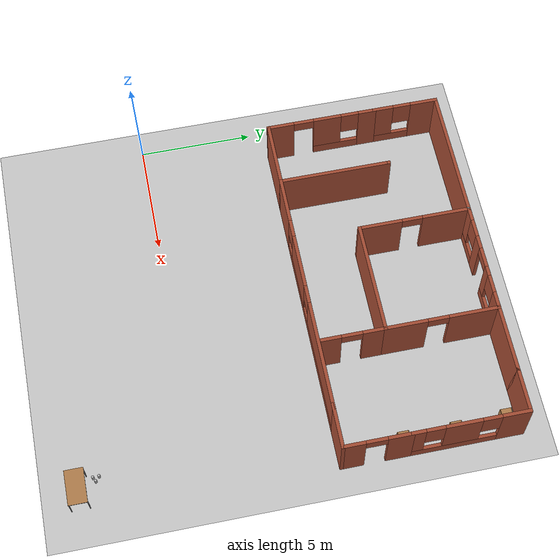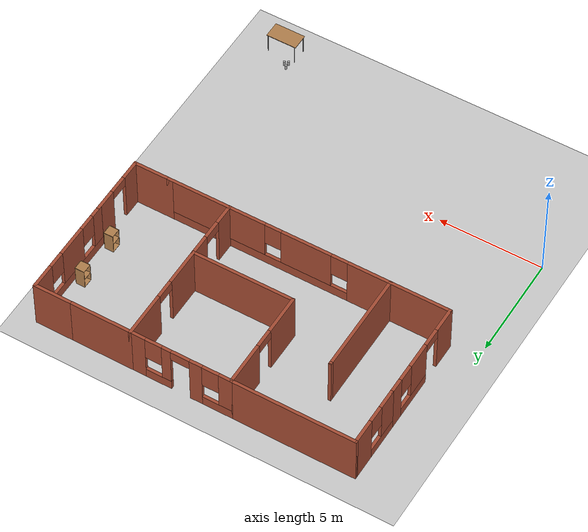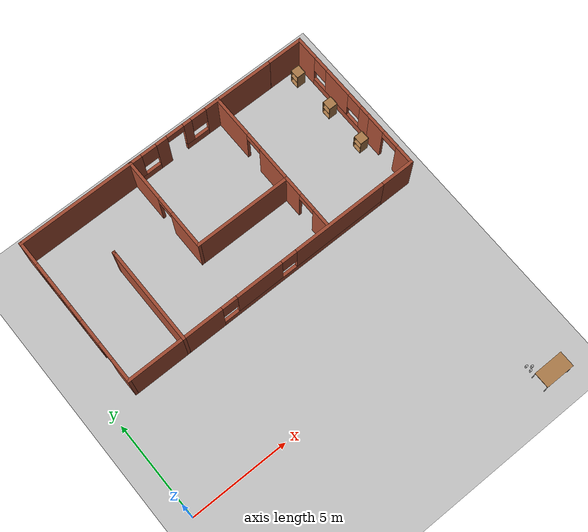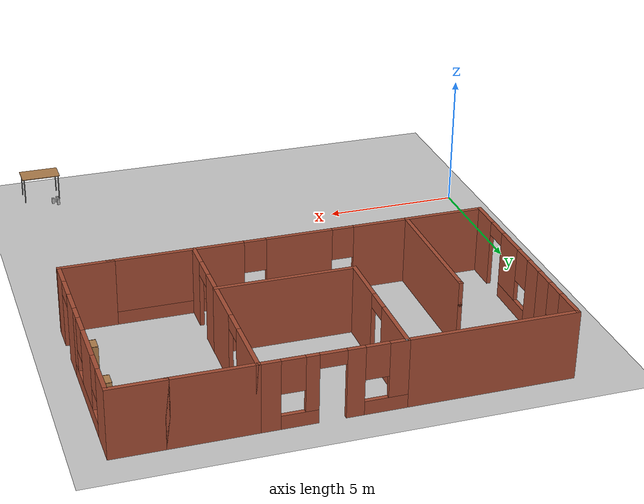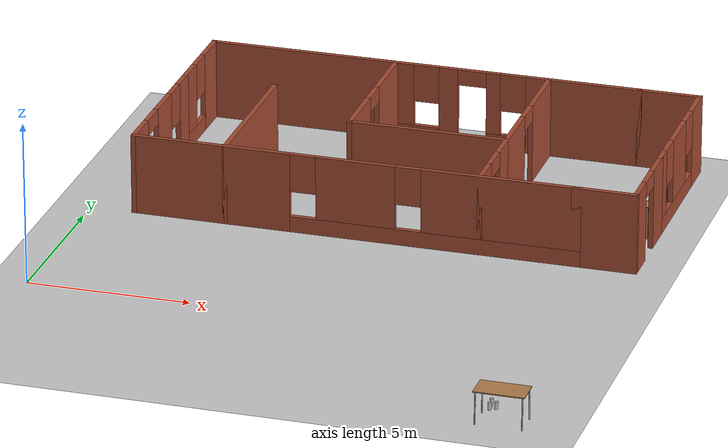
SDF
<sdf version="1.7">
 <world name="default">
  <model name="ground_plane">
   <static>1</static>
   <link name="link">
    <collision name="collision">
     <geometry><plane><normal>0 0 1</normal><size>100 100</size></plane></geometry>
     <surface><friction><ode><mu>100</mu><mu2>50</mu2></ode></friction></surface>
    </collision>
    <visual name="visual">
     <cast_shadows>0</cast_shadows>
     <geometry><plane><normal>0 0 1</normal><size>100 100</size></plane></geometry>
     <material>
      <script><uri>file://media/materials/scripts/gazebo.material</uri><name>Gazebo/Grey</name></script>
     </material>
    </visual>
   </link>
  </model>
  <model name="brick_house1">
   <pose>9.06537 9.59649 0 0 -0 0</pose>
   <link name="Wall_26">
    <collision name="Wall_26_Collision">
     <geometry><box><size>5 0.15 2.5</size></box></geometry>
     <pose>0 0 1.25 0 -0 0</pose>
    </collision>
    <visual name="Wall_26_Visual">
     <pose>0 0 1.25 0 -0 0</pose>
     <geometry><box><size>5 0.15 2.5</size></box></geometry>
     <material>
      <script><uri>file://media/materials/scripts/gazebo.material</uri><name>Gazebo/Bricks</name></script>
      <ambient>1 1 1 1</ambient>
     </material>
     <meta><layer>0</layer></meta>
    </visual>
    <pose>0.575 -1 0 0 -0 3.14159</pose>
   </link>
   <link name="Wall_29">
    <pose>3 1.425 0 0 -0 1.5708</pose>
    <visual name="Wall_29_Visual_0">
     <pose>-1.55939 0 1.25 0 -0 0</pose>
     <geometry><box><size>1.88122 0.15 2.5</size></box></geometry>
     <material>
      <script><uri>file://media/materials/scripts/gazebo.material</uri><name>Gazebo/Bricks</name></script>
      <ambient>1 1 1 1</ambient>
     </material>
     <meta><layer>0</layer></meta>
    </visual>
    <collision name="Wall_29_Collision_0">
     <geometry><box><size>1.88122 0.15 2.5</size></box></geometry>
     <pose>-1.55939 0 1.25 0 -0 0</pose>
    </collision>
    <visual name="Wall_29_Visual_1">
     <pose>1.39061 0 1.25 0 -0 0</pose>
     <geometry><box><size>2.21878 0.15 2.5</size></box></geometry>
     <material>
      <script><uri>file://media/materials/scripts/gazebo.material</uri><name>Gazebo/Bricks</name></script>
      <ambient>1 1 1 1</ambient>
     </material>
     <meta><layer>0</layer></meta>
    </visual>
    <collision name="Wall_29_Collision_1">
     <geometry><box><size>2.21878 0.15 2.5</size></box></geometry>
     <pose>1.39061 0 1.25 0 -0 0</pose>
    </collision>
    <visual name="Wall_29_Visual_2">
     <pose>-0.168782 0 2.25 0 -0 0</pose>
     <geometry><box><size>0.9 0.15 0.5</size></box></geometry>
     <material>
      <script><uri>file://media/materials/scripts/gazebo.material</uri><name>Gazebo/Bricks</name></script>
      <ambient>1 1 1 1</ambient>
     </material>
     <meta><layer>0</layer></meta>
    </visual>
    <collision name="Wall_29_Collision_2">
     <geometry><box><size>0.9 0.15 0.5</size></box></geometry>
     <pose>-0.168782 0 2.25 0 -0 0</pose>
    </collision>
   </link>
   <link name="Wall_30">
    <pose>0.575 3.85 0 0 -0 3.14159</pose>
    <visual name="Wall_30_Visual_0">
     <pose>-2.10282 0 1.25 0 -0 0</pose>
     <geometry><box><size>0.794364 0.15 2.5</size></box></geometry>
     <material>
      <script><uri>file://media/materials/scripts/gazebo.material</uri><name>Gazebo/Bricks</name></script>
      <ambient>1 1 1 1</ambient>
     </material>
     <meta><layer>0</layer></meta>
    </visual>
    <collision name="Wall_30_Collision_0">
     <geometry><box><size>0.794364 0.15 2.5</size></box></geometry>
     <pose>-2.10282 0 1.25 0 -0 0</pose>
    </collision>
    <visual name="Wall_30_Visual_1">
     <pose>0.739466 0 1.25 0 -0 0</pose>
     <geometry><box><size>0.601675 0.15 2.5</size></box></geometry>
     <material>
      <script><uri>file://media/materials/scripts/gazebo.material</uri><name>Gazebo/Bricks</name></script>
      <ambient>1 1 1 1</ambient>
     </material>
     <meta><layer>0</layer></meta>
    </visual>
    <collision name="Wall_30_Collision_1">
     <geometry><box><size>0.601675 0.15 2.5</size></box></geometry>
     <pose>0.739466 0 1.25 0 -0 0</pose>
    </collision>
    <visual name="Wall_30_Visual_2">
     <pose>-1.0835 0 0.25 0 -0 0</pose>
     <geometry><box><size>1.24426 0.15 0.5</size></box></geometry>
     <material>
      <script><uri>file://media/materials/scripts/gazebo.material</uri><name>Gazebo/Bricks</name></script>
      <ambient>1 1 1 1</ambient>
     </material>
     <meta><layer>0</layer></meta>
    </visual>
    <collision name="Wall_30_Collision_2">
     <geometry><box><size>1.24426 0.15 0.5</size></box></geometry>
     <pose>-1.0835 0 0.25 0 -0 0</pose>
    </collision>
    <visual name="Wall_30_Visual_3">
     <pose>1.77015 0 0.25 0 -0 0</pose>
     <geometry><box><size>1.4597 0.15 0.5</size></box></geometry>
     <material>
      <script><uri>file://media/materials/scripts/gazebo.material</uri><name>Gazebo/Bricks</name></script>
      <ambient>1 1 1 1</ambient>
     </material>
     <meta><layer>0</layer></meta>
    </visual>
    <collision name="Wall_30_Collision_3">
     <geometry><box><size>1.4597 0.15 0.5</size></box></geometry>
     <pose>1.77015 0 0.25 0 -0 0</pose>
    </collision>
    <visual name="Wall_30_Visual_4">
     <pose>-0.683504 0 1.5 0 -0 0</pose>
     <geometry><box><size>0.444265 0.15 2</size></box></geometry>
     <material>
      <script><uri>file://media/materials/scripts/gazebo.material</uri><name>Gazebo/Bricks</name></script>
      <ambient>1 1 1 1</ambient>
     </material>
     <meta><layer>0</layer></meta>
    </visual>
    <collision name="Wall_30_Collision_4">
     <geometry><box><size>0.444265 0.15 2</size></box></geometry>
     <pose>-0.683504 0 1.5 0 -0 0</pose>
    </collision>
    <visual name="Wall_30_Visual_5">
     <pose>-0.683504 0 1.5 0 -0 0</pose>
     <geometry><box><size>0.444265 0.15 2</size></box></geometry>
     <material>
      <script><uri>file://media/materials/scripts/gazebo.material</uri><name>Gazebo/Bricks</name></script>
      <ambient>1 1 1 1</ambient>
     </material>
     <meta><layer>0</layer></meta>
    </visual>
    <collision name="Wall_30_Collision_5">
     <geometry><box><size>0.444265 0.15 2</size></box></geometry>
     <pose>-0.683504 0 1.5 0 -0 0</pose>
    </collision>
    <visual name="Wall_30_Visual_6">
     <pose>2.17015 0 1.5 0 -0 0</pose>
     <geometry><box><size>0.659696 0.15 2</size></box></geometry>
     <material>
      <script><uri>file://media/materials/scripts/gazebo.material</uri><name>Gazebo/Bricks</name></script>
      <ambient>1 1 1 1</ambient>
     </material>
     <meta><layer>0</layer></meta>
    </visual>
    <collision name="Wall_30_Collision_6">
     <geometry><box><size>0.659696 0.15 2</size></box></geometry>
     <pose>2.17015 0 1.5 0 -0 0</pose>
    </collision>
    <visual name="Wall_30_Visual_7">
     <pose>-1.30564 0 1.9 0 -0 0</pose>
     <geometry><box><size>0.8 0.15 1.2</size></box></geometry>
     <material>
      <script><uri>file://media/materials/scripts/gazebo.material</uri><name>Gazebo/Bricks</name></script>
      <ambient>1 1 1 1</ambient>
     </material>
     <meta><layer>0</layer></meta>
    </visual>
    <collision name="Wall_30_Collision_7">
     <geometry><box><size>0.8 0.15 1.2</size></box></geometry>
     <pose>-1.30564 0 1.9 0 -0 0</pose>
    </collision>
    <visual name="Wall_30_Visual_8">
     <pose>1.4403 0 1.9 0 -0 0</pose>
     <geometry><box><size>0.8 0.15 1.2</size></box></geometry>
     <material>
      <script><uri>file://media/materials/scripts/gazebo.material</uri><name>Gazebo/Bricks</name></script>
      <ambient>1 1 1 1</ambient>
     </material>
     <meta><layer>0</layer></meta>
    </visual>
    <collision name="Wall_30_Collision_8">
     <geometry><box><size>0.8 0.15 1.2</size></box></geometry>
     <pose>1.4403 0 1.9 0 -0 0</pose>
    </collision>
    <visual name="Wall_30_Visual_9">
     <pose>-0.011371 0 2.25 0 -0 0</pose>
     <geometry><box><size>0.9 0.15 0.5</size></box></geometry>
     <material>
      <script><uri>file://media/materials/scripts/gazebo.material</uri><name>Gazebo/Bricks</name></script>
      <ambient>1 1 1 1</ambient>
     </material>
     <meta><layer>0</layer></meta>
    </visual>
    <collision name="Wall_30_Collision_9">
     <geometry><box><size>0.9 0.15 0.5</size></box></geometry>
     <pose>-0.011371 0 2.25 0 -0 0</pose>
    </collision>
    <visual name="Wall_30_Visual_10">
     <pose>-0.011371 0 2.25 0 -0 0</pose>
     <geometry><box><size>0.9 0.15 0.5</size></box></geometry>
     <material>
      <script><uri>file://media/materials/scripts/gazebo.material</uri><name>Gazebo/Bricks</name></script>
      <ambient>1 1 1 1</ambient>
     </material>
     <meta><layer>0</layer></meta>
    </visual>
    <collision name="Wall_30_Collision_10">
     <geometry><box><size>0.9 0.15 0.5</size></box></geometry>
     <pose>-0.011371 0 2.25 0 -0 0</pose>
    </collision>
   </link>
   <link name="Wall_31">
    <collision name="Wall_31_Collision">
     <geometry><box><size>0.15 0.15 2.5</size></box></geometry>
     <pose>0 0 1.25 0 -0 0</pose>
    </collision>
    <visual name="Wall_31_Visual">
     <pose>0 0 1.25 0 -0 0</pose>
     <geometry><box><size>0.15 0.15 2.5</size></box></geometry>
     <material>
      <script><uri>file://media/materials/scripts/gazebo.material</uri><name>Gazebo/Grey</name></script>
      <ambient>1 1 1 1</ambient>
     </material>
     <meta><layer>0</layer></meta>
    </visual>
    <pose>-1.85 3.85 0 0 -0 0</pose>
   </link>
   <link name="Wall_32">
    <pose>-1.85 1.425 0 0 -0 -1.5708</pose>
    <visual name="Wall_32_Visual_0">
     <pose>-1.42559 0 1.25 0 -0 0</pose>
     <geometry><box><size>2.14882 0.15 2.5</size></box></geometry>
     <material>
      <script><uri>file://media/materials/scripts/gazebo.material</uri><name>Gazebo/Bricks</name></script>
      <ambient>1 1 1 1</ambient>
     </material>
     <meta><layer>0</layer></meta>
    </visual>
    <collision name="Wall_32_Collision_0">
     <geometry><box><size>2.14882 0.15 2.5</size></box></geometry>
     <pose>-1.42559 0 1.25 0 -0 0</pose>
    </collision>
    <visual name="Wall_32_Visual_1">
     <pose>1.52441 0 1.25 0 -0 0</pose>
     <geometry><box><size>1.95118 0.15 2.5</size></box></geometry>
     <material>
      <script><uri>file://media/materials/scripts/gazebo.material</uri><name>Gazebo/Bricks</name></script>
      <ambient>1 1 1 1</ambient>
     </material>
     <meta><layer>0</layer></meta>
    </visual>
    <collision name="Wall_32_Collision_1">
     <geometry><box><size>1.95118 0.15 2.5</size></box></geometry>
     <pose>1.52441 0 1.25 0 -0 0</pose>
    </collision>
    <visual name="Wall_32_Visual_2">
     <pose>0.098822 0 2.25 0 -0 0</pose>
     <geometry><box><size>0.9 0.15 0.5</size></box></geometry>
     <material>
      <script><uri>file://media/materials/scripts/gazebo.material</uri><name>Gazebo/Bricks</name></script>
      <ambient>1 1 1 1</ambient>
     </material>
     <meta><layer>0</layer></meta>
    </visual>
    <collision name="Wall_32_Collision_2">
     <geometry><box><size>0.9 0.15 0.5</size></box></geometry>
     <pose>0.098822 0 2.25 0 -0 0</pose>
    </collision>
   </link>
   <link name="Wall_34">
    <collision name="Wall_34_Collision">
     <geometry><box><size>6 0.15 2.5</size></box></geometry>
     <pose>0 0 1.25 0 -0 0</pose>
    </collision>
    <visual name="Wall_34_Visual">
     <pose>0 0 1.25 0 -0 0</pose>
     <geometry><box><size>6 0.15 2.5</size></box></geometry>
     <material>
      <script><uri>file://media/materials/scripts/gazebo.material</uri><name>Gazebo/Bricks</name></script>
      <ambient>1 1 1 1</ambient>
     </material>
     <meta><layer>0</layer></meta>
    </visual>
    <pose>-4.775 3.85 0 0 -0 3.14159</pose>
   </link>
   <link name="Wall_35">
    <collision name="Wall_35_Collision">
     <geometry><box><size>0.15 0.15 2.5</size></box></geometry>
     <pose>0 0 1.25 0 -0 0</pose>
    </collision>
    <visual name="Wall_35_Visual">
     <pose>0 0 1.25 0 -0 0</pose>
     <geometry><box><size>0.15 0.15 2.5</size></box></geometry>
     <material>
      <script><uri>file://media/materials/scripts/gazebo.material</uri><name>Gazebo/Bricks</name></script>
      <ambient>1 1 1 1</ambient>
     </material>
     <meta><layer>0</layer></meta>
    </visual>
    <pose>-7.7 3.85 0 0 -0 0</pose>
   </link>
   <link name="Wall_39">
    <pose>-7.7 2.425 0 0 -0 -1.5708</pose>
    <visual name="Wall_39_Visual_0">
     <pose>-0.874139 0 1.25 0 -0 0</pose>
     <geometry><box><size>1.25172 0.15 2.5</size></box></geometry>
     <material>
      <script><uri>file://media/materials/scripts/gazebo.material</uri><name>Gazebo/Bricks</name></script>
      <ambient>1 1 1 1</ambient>
     </material>
     <meta><layer>0</layer></meta>
    </visual>
    <collision name="Wall_39_Collision_0">
     <geometry><box><size>1.25172 0.15 2.5</size></box></geometry>
     <pose>-0.874139 0 1.25 0 -0 0</pose>
    </collision>
    <visual name="Wall_39_Visual_1">
     <pose>0.625861 0 0.25 0 -0 0</pose>
     <geometry><box><size>1.74828 0.15 0.5</size></box></geometry>
     <material>
      <script><uri>file://media/materials/scripts/gazebo.material</uri><name>Gazebo/Bricks</name></script>
      <ambient>1 1 1 1</ambient>
     </material>
     <meta><layer>0</layer></meta>
    </visual>
    <collision name="Wall_39_Collision_1">
     <geometry><box><size>1.74828 0.15 0.5</size></box></geometry>
     <pose>0.625861 0 0.25 0 -0 0</pose>
    </collision>
    <visual name="Wall_39_Visual_2">
     <pose>1.02586 0 1.5 0 -0 0</pose>
     <geometry><box><size>0.948279 0.15 2</size></box></geometry>
     <material>
      <script><uri>file://media/materials/scripts/gazebo.material</uri><name>Gazebo/Bricks</name></script>
      <ambient>1 1 1 1</ambient>
     </material>
     <meta><layer>0</layer></meta>
    </visual>
    <collision name="Wall_39_Collision_2">
     <geometry><box><size>0.948279 0.15 2</size></box></geometry>
     <pose>1.02586 0 1.5 0 -0 0</pose>
    </collision>
    <visual name="Wall_39_Visual_3">
     <pose>0.151721 0 1.9 0 -0 0</pose>
     <geometry><box><size>0.8 0.15 1.2</size></box></geometry>
     <material>
      <script><uri>file://media/materials/scripts/gazebo.material</uri><name>Gazebo/Bricks</name></script>
      <ambient>1 1 1 1</ambient>
     </material>
     <meta><layer>0</layer></meta>
    </visual>
    <collision name="Wall_39_Collision_3">
     <geometry><box><size>0.8 0.15 1.2</size></box></geometry>
     <pose>0.151721 0 1.9 0 -0 0</pose>
    </collision>
   </link>
   <link name="Wall_41">
    <collision name="Wall_41_Collision">
     <geometry><box><size>0.15 0.15 2.5</size></box></geometry>
     <pose>0 0 1.25 0 -0 0</pose>
    </collision>
    <visual name="Wall_41_Visual">
     <pose>0 0 1.25 0 -0 0</pose>
     <geometry><box><size>0.15 0.15 2.5</size></box></geometry>
     <material>
      <script><uri>file://media/materials/scripts/gazebo.material</uri><name>Gazebo/Bricks</name></script>
      <ambient>1 1 1 1</ambient>
     </material>
     <meta><layer>0</layer></meta>
    </visual>
    <pose>-4.85 1 0 0 -0 0</pose>
   </link>
   <link name="Wall_44">
    <collision name="Wall_44_Collision">
     <geometry><box><size>5 0.15 2.5</size></box></geometry>
     <pose>0 0 1.25 0 -0 0</pose>
    </collision>
    <visual name="Wall_44_Visual">
     <pose>0 0 1.25 0 -0 0</pose>
     <geometry><box><size>5 0.15 2.5</size></box></geometry>
     <material>
      <script><uri>file://media/materials/scripts/gazebo.material</uri><name>Gazebo/Bricks</name></script>
      <ambient>1 1 1 1</ambient>
     </material>
     <meta><layer>0</layer></meta>
    </visual>
    <pose>-4.85 -1.425 0 0 -0 -1.5708</pose>
   </link>
   <link name="Wall_46">
    <pose>-7.7 -1.425 0 0 -0 -1.5708</pose>
    <visual name="Wall_46_Visual_0">
     <pose>-2.09427 0 1.25 0 -0 0</pose>
     <geometry><box><size>0.811467 0.15 2.5</size></box></geometry>
     <material>
      <script><uri>file://media/materials/scripts/gazebo.material</uri><name>Gazebo/Bricks</name></script>
      <ambient>1 1 1 1</ambient>
     </material>
     <meta><layer>0</layer></meta>
    </visual>
    <collision name="Wall_46_Collision_0">
     <geometry><box><size>0.811467 0.15 2.5</size></box></geometry>
     <pose>-2.09427 0 1.25 0 -0 0</pose>
    </collision>
    <visual name="Wall_46_Visual_1">
     <pose>1.8861 0 1.25 0 -0 0</pose>
     <geometry><box><size>1.22781 0.15 2.5</size></box></geometry>
     <material>
      <script><uri>file://media/materials/scripts/gazebo.material</uri><name>Gazebo/Bricks</name></script>
      <ambient>1 1 1 1</ambient>
     </material>
     <meta><layer>0</layer></meta>
    </visual>
    <collision name="Wall_46_Collision_1">
     <geometry><box><size>1.22781 0.15 2.5</size></box></geometry>
     <pose>1.8861 0 1.25 0 -0 0</pose>
    </collision>
    <visual name="Wall_46_Visual_2">
     <pose>-0.658171 0 0.25 0 -0 0</pose>
     <geometry><box><size>2.06073 0.15 0.5</size></box></geometry>
     <material>
      <script><uri>file://media/materials/scripts/gazebo.material</uri><name>Gazebo/Bricks</name></script>
      <ambient>1 1 1 1</ambient>
     </material>
     <meta><layer>0</layer></meta>
    </visual>
    <collision name="Wall_46_Collision_2">
     <geometry><box><size>2.06073 0.15 0.5</size></box></geometry>
     <pose>-0.658171 0 0.25 0 -0 0</pose>
    </collision>
    <visual name="Wall_46_Visual_3">
     <pose>-0.258171 0 1.5 0 -0 0</pose>
     <geometry><box><size>1.26073 0.15 2</size></box></geometry>
     <material>
      <script><uri>file://media/materials/scripts/gazebo.material</uri><name>Gazebo/Bricks</name></script>
      <ambient>1 1 1 1</ambient>
     </material>
     <meta><layer>0</layer></meta>
    </visual>
    <collision name="Wall_46_Collision_3">
     <geometry><box><size>1.26073 0.15 2</size></box></geometry>
     <pose>-0.258171 0 1.5 0 -0 0</pose>
    </collision>
    <visual name="Wall_46_Visual_4">
     <pose>-1.28853 0 1.9 0 -0 0</pose>
     <geometry><box><size>0.8 0.15 1.2</size></box></geometry>
     <material>
      <script><uri>file://media/materials/scripts/gazebo.material</uri><name>Gazebo/Bricks</name></script>
      <ambient>1 1 1 1</ambient>
     </material>
     <meta><layer>0</layer></meta>
    </visual>
    <collision name="Wall_46_Collision_4">
     <geometry><box><size>0.8 0.15 1.2</size></box></geometry>
     <pose>-1.28853 0 1.9 0 -0 0</pose>
    </collision>
    <visual name="Wall_46_Visual_5">
     <pose>0.822192 0 2.25 0 -0 0</pose>
     <geometry><box><size>0.9 0.15 0.5</size></box></geometry>
     <material>
      <script><uri>file://media/materials/scripts/gazebo.material</uri><name>Gazebo/Bricks</name></script>
      <ambient>1 1 1 1</ambient>
     </material>
     <meta><layer>0</layer></meta>
    </visual>
    <collision name="Wall_46_Collision_5">
     <geometry><box><size>0.9 0.15 0.5</size></box></geometry>
     <pose>0.822192 0 2.25 0 -0 0</pose>
    </collision>
   </link>
   <link name="Wall_47">
    <collision name="Wall_47_Collision">
     <geometry><box><size>3 0.15 2.5</size></box></geometry>
     <pose>0 0 1.25 0 -0 0</pose>
    </collision>
    <visual name="Wall_47_Visual">
     <pose>0 0 1.25 0 -0 0</pose>
     <geometry><box><size>3 0.15 2.5</size></box></geometry>
     <material>
      <script><uri>file://media/materials/scripts/gazebo.material</uri><name>Gazebo/Bricks</name></script>
      <ambient>1 1 1 1</ambient>
     </material>
     <meta><layer>0</layer></meta>
    </visual>
    <pose>-6.275 -3.85 0 0 -0 0</pose>
   </link>
   <link name="Wall_48">
    <pose>0.575 -3.85 0 0 -0 0</pose>
    <visual name="Wall_48_Visual_0">
     <pose>-4.45101 0 1.25 0 -0 0</pose>
     <geometry><box><size>2.09798 0.15 2.5</size></box></geometry>
     <material>
      <script><uri>file://media/materials/scripts/gazebo.material</uri><name>Gazebo/Bricks</name></script>
      <ambient>1 1 1 1</ambient>
     </material>
     <meta><layer>0</layer></meta>
    </visual>
    <collision name="Wall_48_Collision_0">
     <geometry><box><size>2.09798 0.15 2.5</size></box></geometry>
     <pose>-4.45101 0 1.25 0 -0 0</pose>
    </collision>
    <visual name="Wall_48_Visual_1">
     <pose>1.04899 0 0.25 0 -0 0</pose>
     <geometry><box><size>8.90202 0.15 0.5</size></box></geometry>
     <material>
      <script><uri>file://media/materials/scripts/gazebo.material</uri><name>Gazebo/Bricks</name></script>
      <ambient>1 1 1 1</ambient>
     </material>
     <meta><layer>0</layer></meta>
    </visual>
    <collision name="Wall_48_Collision_1">
     <geometry><box><size>8.90202 0.15 0.5</size></box></geometry>
     <pose>1.04899 0 0.25 0 -0 0</pose>
    </collision>
    <visual name="Wall_48_Visual_2">
     <pose>-1.3838 0 1.5 0 -0 0</pose>
     <geometry><box><size>2.43645 0.15 2</size></box></geometry>
     <material>
      <script><uri>file://media/materials/scripts/gazebo.material</uri><name>Gazebo/Bricks</name></script>
      <ambient>1 1 1 1</ambient>
     </material>
     <meta><layer>0</layer></meta>
    </visual>
    <collision name="Wall_48_Collision_2">
     <geometry><box><size>2.43645 0.15 2</size></box></geometry>
     <pose>-1.3838 0 1.5 0 -0 0</pose>
    </collision>
    <visual name="Wall_48_Visual_3">
     <pose>3.06721 0 1.5 0 -0 0</pose>
     <geometry><box><size>4.86557 0.15 2</size></box></geometry>
     <material>
      <script><uri>file://media/materials/scripts/gazebo.material</uri><name>Gazebo/Bricks</name></script>
      <ambient>1 1 1 1</ambient>
     </material>
     <meta><layer>0</layer></meta>
    </visual>
    <collision name="Wall_48_Collision_3">
     <geometry><box><size>4.86557 0.15 2</size></box></geometry>
     <pose>3.06721 0 1.5 0 -0 0</pose>
    </collision>
    <visual name="Wall_48_Visual_4">
     <pose>-3.00202 0 1.9 0 -0 0</pose>
     <geometry><box><size>0.8 0.15 1.2</size></box></geometry>
     <material>
      <script><uri>file://media/materials/scripts/gazebo.material</uri><name>Gazebo/Bricks</name></script>
      <ambient>1 1 1 1</ambient>
     </material>
     <meta><layer>0</layer></meta>
    </visual>
    <collision name="Wall_48_Collision_4">
     <geometry><box><size>0.8 0.15 1.2</size></box></geometry>
     <pose>-3.00202 0 1.9 0 -0 0</pose>
    </collision>
    <visual name="Wall_48_Visual_5">
     <pose>0.234427 0 1.9 0 -0 0</pose>
     <geometry><box><size>0.8 0.15 1.2</size></box></geometry>
     <material>
      <script><uri>file://media/materials/scripts/gazebo.material</uri><name>Gazebo/Bricks</name></script>
      <ambient>1 1 1 1</ambient>
     </material>
     <meta><layer>0</layer></meta>
    </visual>
    <collision name="Wall_48_Collision_5">
     <geometry><box><size>0.8 0.15 1.2</size></box></geometry>
     <pose>0.234427 0 1.9 0 -0 0</pose>
    </collision>
   </link>
   <link name="Wall_51">
    <collision name="Wall_51_Collision">
     <geometry><box><size>0.15 0.15 2.5</size></box></geometry>
     <pose>0 0 1.25 0 -0 0</pose>
    </collision>
    <visual name="Wall_51_Visual">
     <pose>0 0 1.25 0 -0 0</pose>
     <geometry><box><size>0.15 0.15 2.5</size></box></geometry>
     <material>
      <script><uri>file://media/materials/scripts/gazebo.material</uri><name>Gazebo/Bricks</name></script>
      <ambient>1 1 1 1</ambient>
     </material>
     <meta><layer>0</layer></meta>
    </visual>
    <pose>5.85 3.85 0 0 -0 0</pose>
   </link>
   <link name="Wall_56">
    <collision name="Wall_56_Collision">
     <geometry><box><size>3 0.15 2.5</size></box></geometry>
     <pose>0 0 1.25 0 -0 0</pose>
    </collision>
    <visual name="Wall_56_Visual">
     <pose>0 0 1.25 0 -0 0</pose>
     <geometry><box><size>3 0.15 2.5</size></box></geometry>
     <material>
      <script><uri>file://media/materials/scripts/gazebo.material</uri><name>Gazebo/Bricks</name></script>
      <ambient>1 1 1 1</ambient>
     </material>
     <meta><layer>0</layer></meta>
    </visual>
    <pose>4.425 3.85 0 0 -0 0</pose>
   </link>
   <link name="Wall_57">
    <collision name="Wall_57_Collision">
     <geometry><box><size>2 0.15 2.5</size></box></geometry>
     <pose>0 0 1.25 0 -0 0</pose>
    </collision>
    <visual name="Wall_57_Visual">
     <pose>0 0 1.25 0 -0 0</pose>
     <geometry><box><size>2 0.15 2.5</size></box></geometry>
     <material>
      <script><uri>file://media/materials/scripts/gazebo.material</uri><name>Gazebo/Bricks</name></script>
      <ambient>1 1 1 1</ambient>
     </material>
     <meta><layer>0</layer></meta>
    </visual>
    <pose>6.775 3.85 0 0 -0 0</pose>
   </link>
   <link name="Wall_59">
    <pose>7.7 1.425 0 0 -0 -1.5708</pose>
    <visual name="Wall_59_Visual_0">
     <pose>-1.88293 0 1.25 0 -0 0</pose>
     <geometry><box><size>1.23413 0.15 2.5</size></box></geometry>
     <material>
      <script><uri>file://media/materials/scripts/gazebo.material</uri><name>Gazebo/Bricks</name></script>
      <ambient>1 1 1 1</ambient>
     </material>
     <meta><layer>0</layer></meta>
    </visual>
    <collision name="Wall_59_Collision_0">
     <geometry><box><size>1.23413 0.15 2.5</size></box></geometry>
     <pose>-1.88293 0 1.25 0 -0 0</pose>
    </collision>
    <visual name="Wall_59_Visual_1">
     <pose>0.617066 0 0.25 0 -0 0</pose>
     <geometry><box><size>3.76587 0.15 0.5</size></box></geometry>
     <material>
      <script><uri>file://media/materials/scripts/gazebo.material</uri><name>Gazebo/Bricks</name></script>
      <ambient>1 1 1 1</ambient>
     </material>
     <meta><layer>0</layer></meta>
    </visual>
    <collision name="Wall_59_Collision_1">
     <geometry><box><size>3.76587 0.15 0.5</size></box></geometry>
     <pose>0.617066 0 0.25 0 -0 0</pose>
    </collision>
    <visual name="Wall_59_Visual_2">
     <pose>0.303826 0 1.5 0 -0 0</pose>
     <geometry><box><size>1.53939 0.15 2</size></box></geometry>
     <material>
      <script><uri>file://media/materials/scripts/gazebo.material</uri><name>Gazebo/Bricks</name></script>
      <ambient>1 1 1 1</ambient>
     </material>
     <meta><layer>0</layer></meta>
    </visual>
    <collision name="Wall_59_Collision_2">
     <geometry><box><size>1.53939 0.15 2</size></box></geometry>
     <pose>0.303826 0 1.5 0 -0 0</pose>
    </collision>
    <visual name="Wall_59_Visual_3">
     <pose>2.18676 0 1.5 0 -0 0</pose>
     <geometry><box><size>0.62648 0.15 2</size></box></geometry>
     <material>
      <script><uri>file://media/materials/scripts/gazebo.material</uri><name>Gazebo/Bricks</name></script>
      <ambient>1 1 1 1</ambient>
     </material>
     <meta><layer>0</layer></meta>
    </visual>
    <collision name="Wall_59_Collision_3">
     <geometry><box><size>0.62648 0.15 2</size></box></geometry>
     <pose>2.18676 0 1.5 0 -0 0</pose>
    </collision>
    <visual name="Wall_59_Visual_4">
     <pose>-0.865868 0 1.9 0 -0 0</pose>
     <geometry><box><size>0.8 0.15 1.2</size></box></geometry>
     <material>
      <script><uri>file://media/materials/scripts/gazebo.material</uri><name>Gazebo/Bricks</name></script>
      <ambient>1 1 1 1</ambient>
     </material>
     <meta><layer>0</layer></meta>
    </visual>
    <collision name="Wall_59_Collision_4">
     <geometry><box><size>0.8 0.15 1.2</size></box></geometry>
     <pose>-0.865868 0 1.9 0 -0 0</pose>
    </collision>
    <visual name="Wall_59_Visual_5">
     <pose>1.47352 0 1.9 0 -0 0</pose>
     <geometry><box><size>0.8 0.15 1.2</size></box></geometry>
     <material>
      <script><uri>file://media/materials/scripts/gazebo.material</uri><name>Gazebo/Bricks</name></script>
      <ambient>1 1 1 1</ambient>
     </material>
     <meta><layer>0</layer></meta>
    </visual>
    <collision name="Wall_59_Collision_5">
     <geometry><box><size>0.8 0.15 1.2</size></box></geometry>
     <pose>1.47352 0 1.9 0 -0 0</pose>
    </collision>
   </link>
   <link name="Wall_61">
    <pose>7.7 -2.425 0 0 -0 -1.5708</pose>
    <visual name="Wall_61_Visual_0">
     <pose>-0.958368 0 1.25 0 -0 0</pose>
     <geometry><box><size>1.08326 0.15 2.5</size></box></geometry>
     <material>
      <script><uri>file://media/materials/scripts/gazebo.material</uri><name>Gazebo/Bricks</name></script>
      <ambient>1 1 1 1</ambient>
     </material>
     <meta><layer>0</layer></meta>
    </visual>
    <collision name="Wall_61_Collision_0">
     <geometry><box><size>1.08326 0.15 2.5</size></box></geometry>
     <pose>-0.958368 0 1.25 0 -0 0</pose>
    </collision>
    <visual name="Wall_61_Visual_1">
     <pose>0.991632 0 1.25 0 -0 0</pose>
     <geometry><box><size>1.01673 0.15 2.5</size></box></geometry>
     <material>
      <script><uri>file://media/materials/scripts/gazebo.material</uri><name>Gazebo/Bricks</name></script>
      <ambient>1 1 1 1</ambient>
     </material>
     <meta><layer>0</layer></meta>
    </visual>
    <collision name="Wall_61_Collision_1">
     <geometry><box><size>1.01673 0.15 2.5</size></box></geometry>
     <pose>0.991632 0 1.25 0 -0 0</pose>
    </collision>
    <visual name="Wall_61_Visual_2">
     <pose>0.033265 0 2.25 0 -0 0</pose>
     <geometry><box><size>0.9 0.15 0.5</size></box></geometry>
     <material>
      <script><uri>file://media/materials/scripts/gazebo.material</uri><name>Gazebo/Bricks</name></script>
      <ambient>1 1 1 1</ambient>
     </material>
     <meta><layer>0</layer></meta>
    </visual>
    <collision name="Wall_61_Collision_2">
     <geometry><box><size>0.9 0.15 0.5</size></box></geometry>
     <pose>0.033265 0 2.25 0 -0 0</pose>
    </collision>
   </link>
   <link name="Wall_62">
    <collision name="Wall_62_Collision">
     <geometry><box><size>2 0.15 2.5</size></box></geometry>
     <pose>0 0 1.25 0 -0 0</pose>
    </collision>
    <visual name="Wall_62_Visual">
     <pose>0 0 1.25 0 -0 0</pose>
     <geometry><box><size>2 0.15 2.5</size></box></geometry>
     <material>
      <script><uri>file://media/materials/scripts/gazebo.material</uri><name>Gazebo/Bricks</name></script>
      <ambient>1 1 1 1</ambient>
     </material>
     <meta><layer>0</layer></meta>
    </visual>
    <pose>6.775 -3.85 0 0 -0 3.14159</pose>
   </link>
   <link name="Wall_64">
    <pose>3 -2.425 0 0 -0 -1.5708</pose>
    <visual name="Wall_64_Visual_0">
     <pose>-0.975957 0 1.25 0 -0 0</pose>
     <geometry><box><size>1.04809 0.15 2.5</size></box></geometry>
     <material>
      <script><uri>file://media/materials/scripts/gazebo.material</uri><name>Gazebo/Bricks</name></script>
      <ambient>1 1 1 1</ambient>
     </material>
     <meta><layer>0</layer></meta>
    </visual>
    <collision name="Wall_64_Collision_0">
     <geometry><box><size>1.04809 0.15 2.5</size></box></geometry>
     <pose>-0.975957 0 1.25 0 -0 0</pose>
    </collision>
    <visual name="Wall_64_Visual_1">
     <pose>0.974043 0 1.25 0 -0 0</pose>
     <geometry><box><size>1.05191 0.15 2.5</size></box></geometry>
     <material>
      <script><uri>file://media/materials/scripts/gazebo.material</uri><name>Gazebo/Bricks</name></script>
      <ambient>1 1 1 1</ambient>
     </material>
     <meta><layer>0</layer></meta>
    </visual>
    <collision name="Wall_64_Collision_1">
     <geometry><box><size>1.05191 0.15 2.5</size></box></geometry>
     <pose>0.974043 0 1.25 0 -0 0</pose>
    </collision>
    <visual name="Wall_64_Visual_2">
     <pose>-0.001914 0 2.25 0 -0 0</pose>
     <geometry><box><size>0.9 0.15 0.5</size></box></geometry>
     <material>
      <script><uri>file://media/materials/scripts/gazebo.material</uri><name>Gazebo/Bricks</name></script>
      <ambient>1 1 1 1</ambient>
     </material>
     <meta><layer>0</layer></meta>
    </visual>
    <collision name="Wall_64_Collision_2">
     <geometry><box><size>0.9 0.15 0.5</size></box></geometry>
     <pose>-0.001914 0 2.25 0 -0 0</pose>
    </collision>
   </link>
   <static>1</static>
  </model>
  <model name="table_1">
   <static>1</static>
   <link name="link">
    <collision name="surface">
     <pose>0 0 1 0 -0 0</pose>
     <geometry><box><size>1.5 0.8 0.03</size></box></geometry>
     <surface><friction><ode><mu>0.6</mu><mu2>0.6</mu2></ode></friction></surface>
    </collision>
    <visual name="visual1">
     <pose>0 0 1 0 -0 0</pose>
     <geometry><box><size>1.5 0.8 0.03</size></box></geometry>
     <material>
      <script><uri>file://media/materials/scripts/gazebo.material</uri><name>Gazebo/Wood</name></script>
     </material>
    </visual>
    <collision name="front_left_leg">
     <pose>0.68 0.38 0.5 0 -0 0</pose>
     <geometry><cylinder><radius>0.02</radius><length>1</length></cylinder></geometry>
    </collision>
    <visual name="front_left_leg">
     <pose>0.68 0.38 0.5 0 -0 0</pose>
     <geometry><cylinder><radius>0.02</radius><length>1</length></cylinder></geometry>
     <material>
      <script><uri>file://media/materials/scripts/gazebo.material</uri><name>Gazebo/Grey</name></script>
     </material>
    </visual>
    <collision name="front_right_leg">
     <pose>0.68 -0.38 0.5 0 -0 0</pose>
     <geometry><cylinder><radius>0.02</radius><length>1</length></cylinder></geometry>
    </collision>
    <visual name="front_right_leg">
     <pose>0.68 -0.38 0.5 0 -0 0</pose>
     <geometry><cylinder><radius>0.02</radius><length>1</length></cylinder></geometry>
     <material>
      <script><uri>file://media/materials/scripts/gazebo.material</uri><name>Gazebo/Grey</name></script>
     </material>
    </visual>
    <collision name="back_right_leg">
     <pose>-0.68 -0.38 0.5 0 -0 0</pose>
     <geometry><cylinder><radius>0.02</radius><length>1</length></cylinder></geometry>
    </collision>
    <visual name="back_right_leg">
     <pose>-0.68 -0.38 0.5 0 -0 0</pose>
     <geometry><cylinder><radius>0.02</radius><length>1</length></cylinder></geometry>
     <material>
      <script><uri>file://media/materials/scripts/gazebo.material</uri><name>Gazebo/Grey</name></script>
     </material>
    </visual>
    <collision name="back_left_leg">
     <pose>-0.68 0.38 0.5 0 -0 0</pose>
     <geometry><cylinder><radius>0.02</radius><length>1</length></cylinder></geometry>
    </collision>
    <visual name="back_left_leg">
     <pose>-0.68 0.38 0.5 0 -0 0</pose>
     <geometry><cylinder><radius>0.02</radius><length>1</length></cylinder></geometry>
     <material>
      <script><uri>file://media/materials/scripts/gazebo.material</uri><name>Gazebo/Grey</name></script>
     </material>
    </visual>
   </link>
   <pose>15.7292 -4.9524 0 0 -0 0</pose>
  </model>
  <model name="beer">
   <link name="link">
    <pose>0 0 0.115 0 -0 0</pose>
    <inertial>
     <mass>0.39</mass>
     <inertia><ixx>0.00058</ixx><ixy>0</ixy><ixz>0</ixz><iyy>0.00058</iyy><iyz>0</iyz><izz>0.00019</izz></inertia>
    </inertial>
    <collision name="collision">
     <geometry><cylinder><radius>0.055</radius><length>0.23</length></cylinder></geometry>
    </collision>
    <visual name="visual">
     <geometry><cylinder><radius>0.055</radius><length>0.23</length></cylinder></geometry>
     <material>
      <script>
       <uri>model://beer/materials/scripts</uri>
       <uri>model://beer/materials/textures</uri>
       <name>Beer/Diffuse</name>
      </script>
     </material>
    </visual>
   </link>
   <pose>15.3609 -4.20841 -7e-06 -1e-06 -0 -3.6e-05</pose>
  </model>
  <model name="beer_0">
   <link name="link">
    <pose>0 0 0.115 0 -0 0</pose>
    <inertial>
     <mass>0.39</mass>
     <inertia><ixx>0.00058</ixx><ixy>0</ixy><ixz>0</ixz><iyy>0.00058</iyy><iyz>0</iyz><izz>0.00019</izz></inertia>
    </inertial>
    <collision name="collision">
     <geometry><cylinder><radius>0.055</radius><length>0.23</length></cylinder></geometry>
    </collision>
    <visual name="visual">
     <geometry><cylinder><radius>0.055</radius><length>0.23</length></cylinder></geometry>
     <material>
      <script>
       <uri>model://beer/materials/scripts</uri>
       <uri>model://beer/materials/textures</uri>
       <name>Beer/Diffuse</name>
      </script>
     </material>
    </visual>
   </link>
   <pose>15.1887 -4.30492 -7e-06 -1e-06 -0 -3.5e-05</pose>
  </model>
  <model name="beer_1">
   <link name="link">
    <pose>0 0 0.115 0 -0 0</pose>
    <inertial>
     <mass>0.39</mass>
     <inertia><ixx>0.00058</ixx><ixy>0</ixy><ixz>0</ixz><iyy>0.00058</iyy><iyz>0</iyz><izz>0.00019</izz></inertia>
    </inertial>
    <collision name="collision">
     <geometry><cylinder><radius>0.055</radius><length>0.23</length></cylinder></geometry>
    </collision>
    <visual name="visual">
     <geometry><cylinder><radius>0.055</radius><length>0.23</length></cylinder></geometry>
     <material>
      <script>
       <uri>model://beer/materials/scripts</uri>
       <uri>model://beer/materials/textures</uri>
       <name>Beer/Diffuse</name>
      </script>
     </material>
    </visual>
   </link>
   <pose>15.1736 -4.05052 -2e-06 1e-06 -0 -3.4e-05</pose>
  </model>
  <model name="cabinet">
   <static>1</static>
   <link name="cabinet_bottom_plate">
    <inertial>
     <pose>0 0 -1 0 -0 0</pose>
     <inertia><ixx>2.05</ixx><ixy>0</ixy><ixz>0</ixz><iyy>2.05</iyy><iyz>0</iyz><izz>2.05</izz></inertia>
     <mass>25</mass>
    </inertial>
    <collision name="cabinet_bottom_plate_geom">
     <pose>0 0 0.01 0 -0 0</pose>
     <geometry><box><size>0.45 0.45 0.02</size></box></geometry>
    </collision>
    <visual name="cabinet_bottom_plate_geom_visual">
     <pose>0 0 0.01 0 -0 0</pose>
     <geometry><box><size>0.45 0.45 0.02</size></box></geometry>
     <material>
      <script><uri>file://media/materials/scripts/gazebo.material</uri><name>Gazebo/Wood</name></script>
     </material>
    </visual>
    <collision name="cabinet_bottom_plate_geom_cabinet_back_plate">
     <pose>0.235 0 0.51 0 -0 0</pose>
     <geometry><box><size>0.02 0.45 1.02</size></box></geometry>
    </collision>
    <visual name="cabinet_bottom_plate_geom_cabinet_back_plate_visual">
     <pose>0.235 0 0.51 0 -0 0</pose>
     <geometry><box><size>0.02 0.45 1.02</size></box></geometry>
     <material>
      <script><uri>file://media/materials/scripts/gazebo.material</uri><name>Gazebo/Wood</name></script>
     </material>
    </visual>
    <collision name="cabinet_bottom_plate_geom_cabinet_left_plate">
     <pose>0 0.235 0.51 0 -0 0</pose>
     <geometry><box><size>0.45 0.02 1.02</size></box></geometry>
    </collision>
    <visual name="cabinet_bottom_plate_geom_cabinet_left_plate_visual">
     <pose>0 0.235 0.51 0 -0 0</pose>
     <geometry><box><size>0.45 0.02 1.02</size></box></geometry>
     <material>
      <script><uri>file://media/materials/scripts/gazebo.material</uri><name>Gazebo/Wood</name></script>
     </material>
    </visual>
    <collision name="cabinet_bottom_plate_geom_cabinet_middle_plate">
     <pose>0 0 0.51 0 -0 0</pose>
     <geometry><box><size>0.45 0.45 0.02</size></box></geometry>
    </collision>
    <visual name="cabinet_bottom_plate_geom_cabinet_middle_plate_visual">
     <pose>0 0 0.51 0 -0 0</pose>
     <geometry><box><size>0.45 0.45 0.02</size></box></geometry>
     <material>
      <script><uri>file://media/materials/scripts/gazebo.material</uri><name>Gazebo/Wood</name></script>
     </material>
    </visual>
    <collision name="cabinet_bottom_plate_geom_cabinet_right_plate">
     <pose>0 -0.235 0.51 0 -0 0</pose>
     <geometry><box><size>0.45 0.02 1.02</size></box></geometry>
    </collision>
    <visual name="cabinet_bottom_plate_geom_cabinet_right_plate_visual">
     <pose>0 -0.235 0.51 0 -0 0</pose>
     <geometry><box><size>0.45 0.02 1.02</size></box></geometry>
     <material>
      <script><uri>file://media/materials/scripts/gazebo.material</uri><name>Gazebo/Wood</name></script>
     </material>
    </visual>
    <collision name="cabinet_bottom_plate_geom_cabinet_top_plate">
     <pose>0 0 1.01 0 -0 0</pose>
     <geometry><box><size>0.45 0.45 0.02</size></box></geometry>
    </collision>
    <visual name="cabinet_bottom_plate_geom_cabinet_top_plate_visual">
     <pose>0 0 1.01 0 -0 0</pose>
     <geometry><box><size>0.45 0.45 0.02</size></box></geometry>
     <material>
      <script><uri>file://media/materials/scripts/gazebo.material</uri><name>Gazebo/Wood</name></script>
     </material>
    </visual>
   </link>
   <pose>16.1854 12.8445 0 0 -0 0</pose>
  </model>
  <model name="cabinet_0">
   <static>1</static>
   <link name="cabinet_bottom_plate">
    <inertial>
     <pose>0 0 -1 0 -0 0</pose>
     <inertia><ixx>2.05</ixx><ixy>0</ixy><ixz>0</ixz><iyy>2.05</iyy><iyz>0</iyz><izz>2.05</izz></inertia>
     <mass>25</mass>
    </inertial>
    <collision name="cabinet_bottom_plate_geom">
     <pose>0 0 0.01 0 -0 0</pose>
     <geometry><box><size>0.45 0.45 0.02</size></box></geometry>
    </collision>
    <visual name="cabinet_bottom_plate_geom_visual">
     <pose>0 0 0.01 0 -0 0</pose>
     <geometry><box><size>0.45 0.45 0.02</size></box></geometry>
     <material>
      <script><uri>file://media/materials/scripts/gazebo.material</uri><name>Gazebo/Wood</name></script>
     </material>
    </visual>
    <collision name="cabinet_bottom_plate_geom_cabinet_back_plate">
     <pose>0.235 0 0.51 0 -0 0</pose>
     <geometry><box><size>0.02 0.45 1.02</size></box></geometry>
    </collision>
    <visual name="cabinet_bottom_plate_geom_cabinet_back_plate_visual">
     <pose>0.235 0 0.51 0 -0 0</pose>
     <geometry><box><size>0.02 0.45 1.02</size></box></geometry>
     <material>
      <script><uri>file://media/materials/scripts/gazebo.material</uri><name>Gazebo/Wood</name></script>
     </material>
    </visual>
    <collision name="cabinet_bottom_plate_geom_cabinet_left_plate">
     <pose>0 0.235 0.51 0 -0 0</pose>
     <geometry><box><size>0.45 0.02 1.02</size></box></geometry>
    </collision>
    <visual name="cabinet_bottom_plate_geom_cabinet_left_plate_visual">
     <pose>0 0.235 0.51 0 -0 0</pose>
     <geometry><box><size>0.45 0.02 1.02</size></box></geometry>
     <material>
      <script><uri>file://media/materials/scripts/gazebo.material</uri><name>Gazebo/Wood</name></script>
     </material>
    </visual>
    <collision name="cabinet_bottom_plate_geom_cabinet_middle_plate">
     <pose>0 0 0.51 0 -0 0</pose>
     <geometry><box><size>0.45 0.45 0.02</size></box></geometry>
    </collision>
    <visual name="cabinet_bottom_plate_geom_cabinet_middle_plate_visual">
     <pose>0 0 0.51 0 -0 0</pose>
     <geometry><box><size>0.45 0.45 0.02</size></box></geometry>
     <material>
      <script><uri>file://media/materials/scripts/gazebo.material</uri><name>Gazebo/Wood</name></script>
     </material>
    </visual>
    <collision name="cabinet_bottom_plate_geom_cabinet_right_plate">
     <pose>0 -0.235 0.51 0 -0 0</pose>
     <geometry><box><size>0.45 0.02 1.02</size></box></geometry>
    </collision>
    <visual name="cabinet_bottom_plate_geom_cabinet_right_plate_visual">
     <pose>0 -0.235 0.51 0 -0 0</pose>
     <geometry><box><size>0.45 0.02 1.02</size></box></geometry>
     <material>
      <script><uri>file://media/materials/scripts/gazebo.material</uri><name>Gazebo/Wood</name></script>
     </material>
    </visual>
    <collision name="cabinet_bottom_plate_geom_cabinet_top_plate">
     <pose>0 0 1.01 0 -0 0</pose>
     <geometry><box><size>0.45 0.45 0.02</size></box></geometry>
    </collision>
    <visual name="cabinet_bottom_plate_geom_cabinet_top_plate_visual">
     <pose>0 0 1.01 0 -0 0</pose>
     <geometry><box><size>0.45 0.45 0.02</size></box></geometry>
     <material>
      <script><uri>file://media/materials/scripts/gazebo.material</uri><name>Gazebo/Wood</name></script>
     </material>
    </visual>
   </link>
   <pose>16.3101 10.6773 0 0 -0 0</pose>
  </model>
  <model name="cabinet_1">
   <static>1</static>
   <link name="cabinet_bottom_plate">
    <inertial>
     <pose>0 0 -1 0 -0 0</pose>
     <inertia><ixx>2.05</ixx><ixy>0</ixy><ixz>0</ixz><iyy>2.05</iyy><iyz>0</iyz><izz>2.05</izz></inertia>
     <mass>25</mass>
    </inertial>
    <collision name="cabinet_bottom_plate_geom">
     <pose>0 0 0.01 0 -0 0</pose>
     <geometry><box><size>0.45 0.45 0.02</size></box></geometry>
    </collision>
    <visual name="cabinet_bottom_plate_geom_visual">
     <pose>0 0 0.01 0 -0 0</pose>
     <geometry><box><size>0.45 0.45 0.02</size></box></geometry>
     <material>
      <script><uri>file://media/materials/scripts/gazebo.material</uri><name>Gazebo/Wood</name></script>
     </material>
    </visual>
    <collision name="cabinet_bottom_plate_geom_cabinet_back_plate">
     <pose>0.235 0 0.51 0 -0 0</pose>
     <geometry><box><size>0.02 0.45 1.02</size></box></geometry>
    </collision>
    <visual name="cabinet_bottom_plate_geom_cabinet_back_plate_visual">
     <pose>0.235 0 0.51 0 -0 0</pose>
     <geometry><box><size>0.02 0.45 1.02</size></box></geometry>
     <material>
      <script><uri>file://media/materials/scripts/gazebo.material</uri><name>Gazebo/Wood</name></script>
     </material>
    </visual>
    <collision name="cabinet_bottom_plate_geom_cabinet_left_plate">
     <pose>0 0.235 0.51 0 -0 0</pose>
     <geometry><box><size>0.45 0.02 1.02</size></box></geometry>
    </collision>
    <visual name="cabinet_bottom_plate_geom_cabinet_left_plate_visual">
     <pose>0 0.235 0.51 0 -0 0</pose>
     <geometry><box><size>0.45 0.02 1.02</size></box></geometry>
     <material>
      <script><uri>file://media/materials/scripts/gazebo.material</uri><name>Gazebo/Wood</name></script>
     </material>
    </visual>
    <collision name="cabinet_bottom_plate_geom_cabinet_middle_plate">
     <pose>0 0 0.51 0 -0 0</pose>
     <geometry><box><size>0.45 0.45 0.02</size></box></geometry>
    </collision>
    <visual name="cabinet_bottom_plate_geom_cabinet_middle_plate_visual">
     <pose>0 0 0.51 0 -0 0</pose>
     <geometry><box><size>0.45 0.45 0.02</size></box></geometry>
     <material>
      <script><uri>file://media/materials/scripts/gazebo.material</uri><name>Gazebo/Wood</name></script>
     </material>
    </visual>
    <collision name="cabinet_bottom_plate_geom_cabinet_right_plate">
     <pose>0 -0.235 0.51 0 -0 0</pose>
     <geometry><box><size>0.45 0.02 1.02</size></box></geometry>
    </collision>
    <visual name="cabinet_bottom_plate_geom_cabinet_right_plate_visual">
     <pose>0 -0.235 0.51 0 -0 0</pose>
     <geometry><box><size>0.45 0.02 1.02</size></box></geometry>
     <material>
      <script><uri>file://media/materials/scripts/gazebo.material</uri><name>Gazebo/Wood</name></script>
     </material>
    </visual>
    <collision name="cabinet_bottom_plate_geom_cabinet_top_plate">
     <pose>0 0 1.01 0 -0 0</pose>
     <geometry><box><size>0.45 0.45 0.02</size></box></geometry>
    </collision>
    <visual name="cabinet_bottom_plate_geom_cabinet_top_plate_visual">
     <pose>0 0 1.01 0 -0 0</pose>
     <geometry><box><size>0.45 0.45 0.02</size></box></geometry>
     <material>
      <script><uri>file://media/materials/scripts/gazebo.material</uri><name>Gazebo/Wood</name></script>
     </material>
    </visual>
   </link>
   <pose>16.3045 8.45575 0 0 -0 0</pose>
  </model>
 </world>
</sdf>
